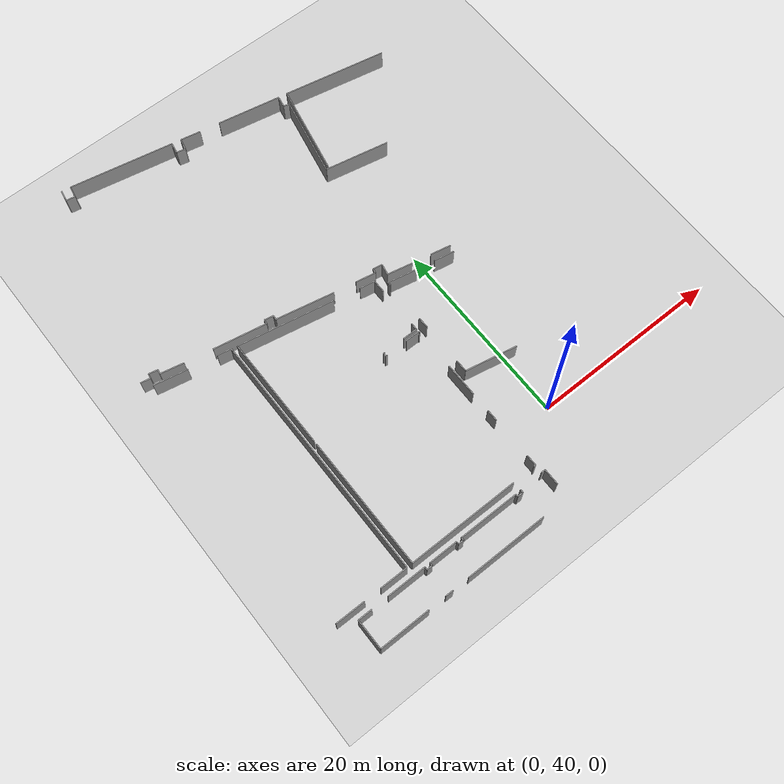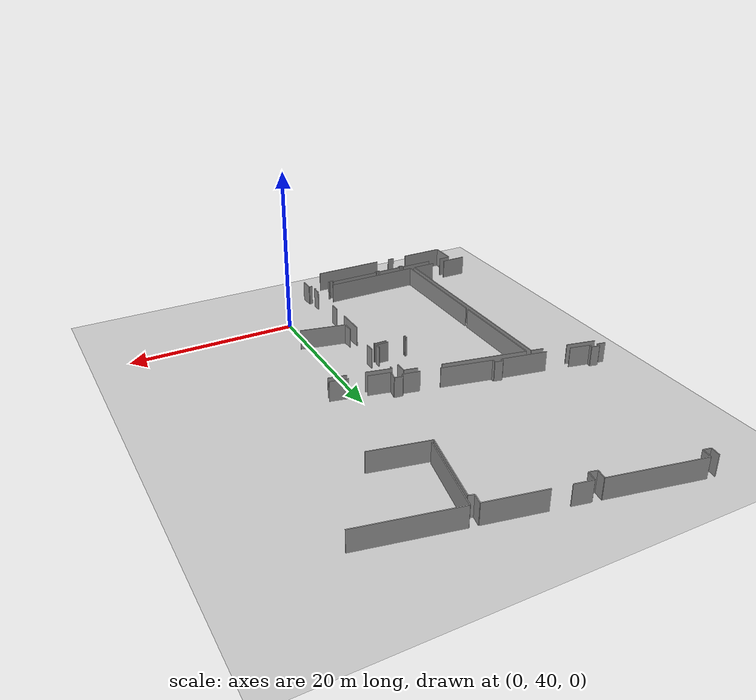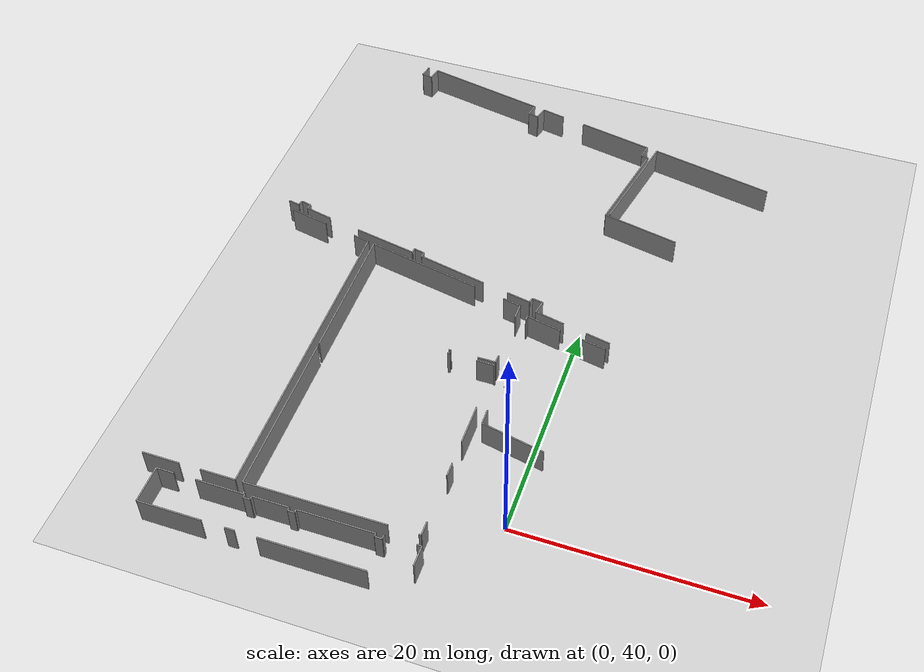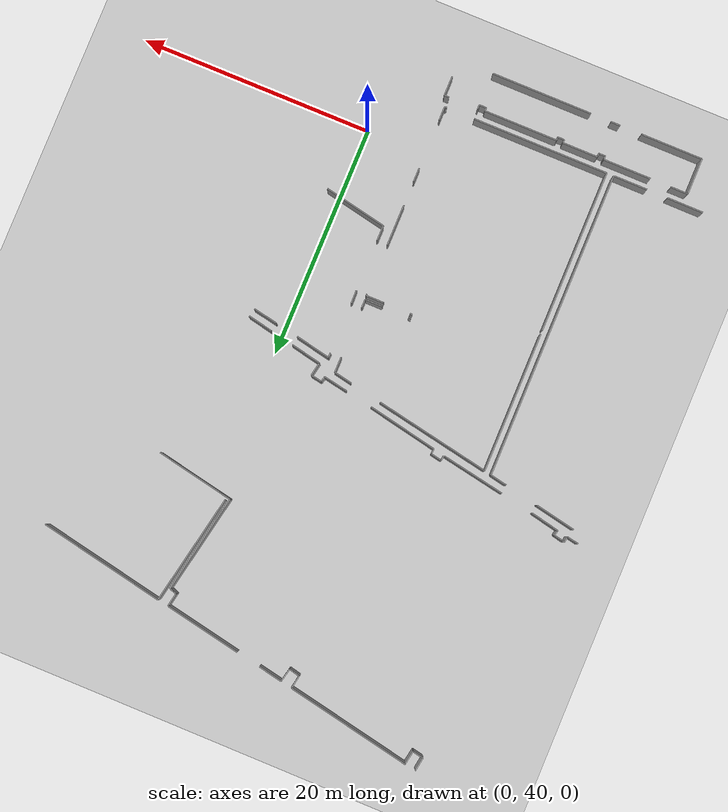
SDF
<sdf version="1.6">
 <world name="default">
  <model name="ground_plane">
   <static>1</static>
   <link name="link">
    <collision name="collision">
     <geometry><plane><normal>0 0 1</normal><size>100 100</size></plane></geometry>
     <surface><friction><ode><mu>100</mu><mu2>50</mu2></ode></friction></surface>
    </collision>
    <visual name="visual">
     <cast_shadows>0</cast_shadows>
     <geometry><plane><normal>0 0 1</normal><size>100 100</size></plane></geometry>
     <material>
      <script><uri>file://media/materials/scripts/gazebo.material</uri><name>Gazebo/Grey</name></script>
     </material>
    </visual>
   </link>
  </model>
  <model name="0510045925_40">
   <static>1</static>
   <link name="Wall_406">
    <collision name="Wall_406_Collision">
     <geometry><box><size>1.16762473719 0.1 2.5</size></box></geometry>
     <pose>0.583812368594 0 1.25 0 0 0</pose>
    </collision>
    <visual name="Wall_406_Visual">
     <pose>0.583812368594 0 1.25 0 0 0</pose>
     <geometry><box><size>1.16762473719 0.1 2.5</size></box></geometry>
     <material>
      <script><uri>file://media/materials/scripts/gazebo.material</uri><name>Gazebo/Grey</name></script>
      <ambient>1 1 1 1</ambient>
     </material>
    </visual>
    <pose>110.372122535 -14.1389051039 0 0 0 -1.73322917327</pose>
   </link>
   <link name="Wall_407">
    <collision name="Wall_407_Collision">
     <geometry><box><size>0.953694490058 0.1 2.5</size></box></geometry>
     <pose>0.476847245029 0 1.25 0 0 0</pose>
    </collision>
    <visual name="Wall_407_Visual">
     <pose>0.476847245029 0 1.25 0 0 0</pose>
     <geometry><box><size>0.953694490058 0.1 2.5</size></box></geometry>
     <material>
      <script><uri>file://media/materials/scripts/gazebo.material</uri><name>Gazebo/Grey</name></script>
      <ambient>1 1 1 1</ambient>
     </material>
    </visual>
    <pose>110.18329484 -15.2911601228 0 0 0 -0.191445734444</pose>
   </link>
   <link name="Wall_408">
    <collision name="Wall_408_Collision">
     <geometry><box><size>1.19925465772 0.1 2.5</size></box></geometry>
     <pose>0.599627328858 0 1.25 0 0 0</pose>
    </collision>
    <visual name="Wall_408_Visual">
     <pose>0.599627328858 0 1.25 0 0 0</pose>
     <geometry><box><size>1.19925465772 0.1 2.5</size></box></geometry>
     <material>
      <script><uri>file://media/materials/scripts/gazebo.material</uri><name>Gazebo/Grey</name></script>
      <ambient>1 1 1 1</ambient>
     </material>
    </visual>
    <pose>111.119565493 -15.4726275983 0 0 0 1.39336573392</pose>
   </link>
   <link name="Wall_409">
    <collision name="Wall_409_Collision">
     <geometry><box><size>11.0097340913 0.1 2.5</size></box></geometry>
     <pose>5.50486704563 0 1.25 0 0 0</pose>
    </collision>
    <visual name="Wall_409_Visual">
     <pose>5.50486704563 0 1.25 0 0 0</pose>
     <geometry><box><size>11.0097340913 0.1 2.5</size></box></geometry>
     <material>
      <script><uri>file://media/materials/scripts/gazebo.material</uri><name>Gazebo/Grey</name></script>
      <ambient>1 1 1 1</ambient>
     </material>
    </visual>
    <pose>111.331235248 -14.2922007056 0 0 0 -0.194918079295</pose>
   </link>
   <link name="Wall_410">
    <collision name="Wall_410_Collision">
     <geometry><box><size>1.1505442281 0.1 2.5</size></box></geometry>
     <pose>0.575272114048 0 1.25 0 0 0</pose>
    </collision>
    <visual name="Wall_410_Visual">
     <pose>0.575272114048 0 1.25 0 0 0</pose>
     <geometry><box><size>1.1505442281 0.1 2.5</size></box></geometry>
     <material>
      <script><uri>file://media/materials/scripts/gazebo.material</uri><name>Gazebo/Grey</name></script>
      <ambient>1 1 1 1</ambient>
     </material>
    </visual>
    <pose>122.132483947 -16.4246338925 0 0 0 -1.74327061481</pose>
   </link>
   <link name="Wall_411">
    <collision name="Wall_411_Collision">
     <geometry><box><size>0.946595777767 0.1 2.5</size></box></geometry>
     <pose>0.473297888884 0 1.25 0 0 0</pose>
    </collision>
    <visual name="Wall_411_Visual">
     <pose>0.473297888884 0 1.25 0 0 0</pose>
     <geometry><box><size>0.946595777767 0.1 2.5</size></box></geometry>
     <material>
      <script><uri>file://media/materials/scripts/gazebo.material</uri><name>Gazebo/Grey</name></script>
      <ambient>1 1 1 1</ambient>
     </material>
    </visual>
    <pose>121.93502703 -17.5581076622 0 0 0 -0.229371189647</pose>
   </link>
   <link name="Wall_412">
    <collision name="Wall_412_Collision">
     <geometry><box><size>1.1955683 0.1 2.5</size></box></geometry>
     <pose>0.59778415 0 1.25 0 0 0</pose>
    </collision>
    <visual name="Wall_412_Visual">
     <pose>0.59778415 0 1.25 0 0 0</pose>
     <geometry><box><size>1.1955683 0.1 2.5</size></box></geometry>
     <material>
      <script><uri>file://media/materials/scripts/gazebo.material</uri><name>Gazebo/Grey</name></script>
      <ambient>1 1 1 1</ambient>
     </material>
    </visual>
    <pose>122.856831045 -17.7733306261 0 0 0 1.349709702</pose>
   </link>
   <link name="Wall_413">
    <collision name="Wall_413_Collision">
     <geometry><box><size>2.12935052196 0.1 2.5</size></box></geometry>
     <pose>1.06467526098 0 1.25 0 0 0</pose>
    </collision>
    <visual name="Wall_413_Visual">
     <pose>1.06467526098 0 1.25 0 0 0</pose>
     <geometry><box><size>2.12935052196 0.1 2.5</size></box></geometry>
     <material>
      <script><uri>file://media/materials/scripts/gazebo.material</uri><name>Gazebo/Grey</name></script>
      <ambient>1 1 1 1</ambient>
     </material>
    </visual>
    <pose>123.119007132 -16.60686277 0 0 0 -0.198564329771</pose>
   </link>
   <link name="Wall_414">
    <collision name="Wall_414_Collision">
     <geometry><box><size>6.74380614563 0.1 2.5</size></box></geometry>
     <pose>3.37190307281 0 1.25 0 0 0</pose>
    </collision>
    <visual name="Wall_414_Visual">
     <pose>3.37190307281 0 1.25 0 0 0</pose>
     <geometry><box><size>6.74380614563 0.1 2.5</size></box></geometry>
     <material>
      <script><uri>file://media/materials/scripts/gazebo.material</uri><name>Gazebo/Grey</name></script>
      <ambient>1 1 1 1</ambient>
     </material>
    </visual>
    <pose>127.3054491 -17.4121722799 0 0 0 -0.191409728844</pose>
   </link>
   <link name="Wall_415">
    <collision name="Wall_415_Collision">
     <geometry><box><size>1.17546431972 0.1 2.5</size></box></geometry>
     <pose>0.587732159859 0 1.25 0 0 0</pose>
    </collision>
    <visual name="Wall_415_Visual">
     <pose>0.587732159859 0 1.25 0 0 0</pose>
     <geometry><box><size>1.17546431972 0.1 2.5</size></box></geometry>
     <material>
      <script><uri>file://media/materials/scripts/gazebo.material</uri><name>Gazebo/Grey</name></script>
      <ambient>1 1 1 1</ambient>
     </material>
    </visual>
    <pose>133.926093246 -18.6951346413 0 0 0 -1.75976523876</pose>
   </link>
   <link name="Wall_416">
    <collision name="Wall_416_Collision">
     <geometry><box><size>0.638072084285 0.1 2.5</size></box></geometry>
     <pose>0.319036042143 0 1.25 0 0 0</pose>
    </collision>
    <visual name="Wall_416_Visual">
     <pose>0.319036042143 0 1.25 0 0 0</pose>
     <geometry><box><size>0.638072084285 0.1 2.5</size></box></geometry>
     <material>
      <script><uri>file://media/materials/scripts/gazebo.material</uri><name>Gazebo/Grey</name></script>
      <ambient>1 1 1 1</ambient>
     </material>
    </visual>
    <pose>133.705286668 -19.8496738661 0 0 0 -0.338983720525</pose>
   </link>
   <link name="Wall_417">
    <collision name="Wall_417_Collision">
     <geometry><box><size>8.68907064149 0.1 2.5</size></box></geometry>
     <pose>4.34453532074 0 1.25 0 0 0</pose>
    </collision>
    <visual name="Wall_417_Visual">
     <pose>4.34453532074 0 1.25 0 0 0</pose>
     <geometry><box><size>8.68907064149 0.1 2.5</size></box></geometry>
     <material>
      <script><uri>file://media/materials/scripts/gazebo.material</uri><name>Gazebo/Grey</name></script>
      <ambient>1 1 1 1</ambient>
     </material>
    </visual>
    <pose>134.307048044 -20.0618512221 0 0 0 -1.76744146718</pose>
   </link>
   <link name="Wall_418">
    <collision name="Wall_418_Collision">
     <geometry><box><size>6.83606725752 0.1 2.5</size></box></geometry>
     <pose>3.41803362876 0 1.25 0 0 0</pose>
    </collision>
    <visual name="Wall_418_Visual">
     <pose>3.41803362876 0 1.25 0 0 0</pose>
     <geometry><box><size>6.83606725752 0.1 2.5</size></box></geometry>
     <material>
      <script><uri>file://media/materials/scripts/gazebo.material</uri><name>Gazebo/Grey</name></script>
      <ambient>1 1 1 1</ambient>
     </material>
    </visual>
    <pose>132.609375397 -28.5834623487 0 0 0 -0.196965972208</pose>
   </link>
   <link name="Wall_476">
    <collision name="Wall_476_Collision">
     <geometry><box><size>2.17852946456 0.1 2.5</size></box></geometry>
     <pose>1.08926473228 0 1.25 0 0 0</pose>
    </collision>
    <visual name="Wall_476_Visual">
     <pose>1.08926473228 0 1.25 0 0 0</pose>
     <geometry><box><size>2.17852946456 0.1 2.5</size></box></geometry>
     <material>
      <script><uri>file://media/materials/scripts/gazebo.material</uri><name>Gazebo/Grey</name></script>
      <ambient>1 1 1 1</ambient>
     </material>
    </visual>
    <pose>136.928301312 -42.9633004238 0 0 0 2.94246066704</pose>
   </link>
   <link name="Wall_477">
    <collision name="Wall_477_Collision">
     <geometry><box><size>2.65362689212 0.1 2.5</size></box></geometry>
     <pose>1.32681344606 0 1.25 0 0 0</pose>
    </collision>
    <visual name="Wall_477_Visual">
     <pose>1.32681344606 0 1.25 0 0 0</pose>
     <geometry><box><size>2.65362689212 0.1 2.5</size></box></geometry>
     <material>
      <script><uri>file://media/materials/scripts/gazebo.material</uri><name>Gazebo/Grey</name></script>
      <ambient>1 1 1 1</ambient>
     </material>
    </visual>
    <pose>132.750488566 -42.1387020634 0 0 0 2.93536237397</pose>
   </link>
   <link name="Wall_478">
    <collision name="Wall_478_Collision">
     <geometry><box><size>1.18428658175 0.1 2.5</size></box></geometry>
     <pose>0.592143290875 0 1.25 0 0 0</pose>
    </collision>
    <visual name="Wall_478_Visual">
     <pose>0.592143290875 0 1.25 0 0 0</pose>
     <geometry><box><size>1.18428658175 0.1 2.5</size></box></geometry>
     <material>
      <script><uri>file://media/materials/scripts/gazebo.material</uri><name>Gazebo/Grey</name></script>
      <ambient>1 1 1 1</ambient>
     </material>
    </visual>
    <pose>130.153092561 -41.5953148397 0 0 0 1.37604859836</pose>
   </link>
   <link name="Wall_479">
    <collision name="Wall_479_Collision">
     <geometry><box><size>0.963227024145 0.1 2.5</size></box></geometry>
     <pose>0.481613512073 0 1.25 0 0 0</pose>
    </collision>
    <visual name="Wall_479_Visual">
     <pose>0.481613512073 0 1.25 0 0 0</pose>
     <geometry><box><size>0.963227024145 0.1 2.5</size></box></geometry>
     <material>
      <script><uri>file://media/materials/scripts/gazebo.material</uri><name>Gazebo/Grey</name></script>
      <ambient>1 1 1 1</ambient>
     </material>
    </visual>
    <pose>130.382274562 -40.4334153955 0 0 0 2.97081267335</pose>
   </link>
   <link name="Wall_480">
    <collision name="Wall_480_Collision">
     <geometry><box><size>0.472501591577 0.1 2.5</size></box></geometry>
     <pose>0.236250795788 0 1.25 0 0 0</pose>
    </collision>
    <visual name="Wall_480_Visual">
     <pose>0.236250795788 0 1.25 0 0 0</pose>
     <geometry><box><size>0.472501591577 0.1 2.5</size></box></geometry>
     <material>
      <script><uri>file://media/materials/scripts/gazebo.material</uri><name>Gazebo/Grey</name></script>
      <ambient>1 1 1 1</ambient>
     </material>
    </visual>
    <pose>129.433060075 -40.2697139667 0 0 0 -1.81603554229</pose>
   </link>
   <link name="Wall_481">
    <collision name="Wall_481_Collision">
     <geometry><box><size>2.1151331569 0.1 2.5</size></box></geometry>
     <pose>1.05756657845 0 1.25 0 0 0</pose>
    </collision>
    <visual name="Wall_481_Visual">
     <pose>1.05756657845 0 1.25 0 0 0</pose>
     <geometry><box><size>2.1151331569 0.1 2.5</size></box></geometry>
     <material>
      <script><uri>file://media/materials/scripts/gazebo.material</uri><name>Gazebo/Grey</name></script>
      <ambient>1 1 1 1</ambient>
     </material>
    </visual>
    <pose>129.318342174 -40.7280779676 0 0 0 2.95683439136</pose>
   </link>
   <link name="Wall_482">
    <collision name="Wall_482_Collision">
     <geometry><box><size>6.15661132291 0.1 2.5</size></box></geometry>
     <pose>3.07830566145 0 1.25 0 0 0</pose>
    </collision>
    <visual name="Wall_482_Visual">
     <pose>3.07830566145 0 1.25 0 0 0</pose>
     <geometry><box><size>6.15661132291 0.1 2.5</size></box></geometry>
     <material>
      <script><uri>file://media/materials/scripts/gazebo.material</uri><name>Gazebo/Grey</name></script>
      <ambient>1 1 1 1</ambient>
     </material>
    </visual>
    <pose>124.894088983 -39.9098246237 0 0 0 2.94198188191</pose>
   </link>
   <link name="Wall_483">
    <collision name="Wall_483_Collision">
     <geometry><box><size>0.448920073572 0.1 2.5</size></box></geometry>
     <pose>0.224460036786 0 1.25 0 0 0</pose>
    </collision>
    <visual name="Wall_483_Visual">
     <pose>0.224460036786 0 1.25 0 0 0</pose>
     <geometry><box><size>0.448920073572 0.1 2.5</size></box></geometry>
     <material>
      <script><uri>file://media/materials/scripts/gazebo.material</uri><name>Gazebo/Grey</name></script>
      <ambient>1 1 1 1</ambient>
     </material>
    </visual>
    <pose>118.859724372 -38.6890434253 0 0 0 1.48986176769</pose>
   </link>
   <link name="Wall_484">
    <collision name="Wall_484_Collision">
     <geometry><box><size>0.967169067021 0.1 2.5</size></box></geometry>
     <pose>0.48358453351 0 1.25 0 0 0</pose>
    </collision>
    <visual name="Wall_484_Visual">
     <pose>0.48358453351 0 1.25 0 0 0</pose>
     <geometry><box><size>0.967169067021 0.1 2.5</size></box></geometry>
     <material>
      <script><uri>file://media/materials/scripts/gazebo.material</uri><name>Gazebo/Grey</name></script>
      <ambient>1 1 1 1</ambient>
     </material>
    </visual>
    <pose>118.896017868 -38.241592853 0 0 0 2.9418812109</pose>
   </link>
   <link name="Wall_485">
    <collision name="Wall_485_Collision">
     <geometry><box><size>0.441941517191 0.1 2.5</size></box></geometry>
     <pose>0.220970758595 0 1.25 0 0 0</pose>
    </collision>
    <visual name="Wall_485_Visual">
     <pose>0.220970758595 0 1.25 0 0 0</pose>
     <geometry><box><size>0.441941517191 0.1 2.5</size></box></geometry>
     <material>
      <script><uri>file://media/materials/scripts/gazebo.material</uri><name>Gazebo/Grey</name></script>
      <ambient>1 1 1 1</ambient>
     </material>
    </visual>
    <pose>117.948072384 -38.0497195503 0 0 0 -1.68475135438</pose>
   </link>
   <link name="Wall_486">
    <collision name="Wall_486_Collision">
     <geometry><box><size>5.6040845928 0.1 2.5</size></box></geometry>
     <pose>2.8020422964 0 1.25 0 0 0</pose>
    </collision>
    <visual name="Wall_486_Visual">
     <pose>2.8020422964 0 1.25 0 0 0</pose>
     <geometry><box><size>5.6040845928 0.1 2.5</size></box></geometry>
     <material>
      <script><uri>file://media/materials/scripts/gazebo.material</uri><name>Gazebo/Grey</name></script>
      <ambient>1 1 1 1</ambient>
     </material>
    </visual>
    <pose>117.897819852 -38.4887947006 0 0 0 2.9586038853</pose>
   </link>
   <link name="Wall_487">
    <collision name="Wall_487_Collision">
     <geometry><box><size>2.47294851765 0.1 2.5</size></box></geometry>
     <pose>1.23647425883 0 1.25 0 0 0</pose>
    </collision>
    <visual name="Wall_487_Visual">
     <pose>1.23647425883 0 1.25 0 0 0</pose>
     <geometry><box><size>2.47294851765 0.1 2.5</size></box></geometry>
     <material>
      <script><uri>file://media/materials/scripts/gazebo.material</uri><name>Gazebo/Grey</name></script>
      <ambient>1 1 1 1</ambient>
     </material>
    </visual>
    <pose>109.466054161 -36.9142153752 0 0 0 2.9312949735</pose>
   </link>
   <link name="Wall_488">
    <collision name="Wall_488_Collision">
     <geometry><box><size>0.454938948549 0.1 2.5</size></box></geometry>
     <pose>0.227469474275 0 1.25 0 0 0</pose>
    </collision>
    <visual name="Wall_488_Visual">
     <pose>0.227469474275 0 1.25 0 0 0</pose>
     <geometry><box><size>0.454938948549 0.1 2.5</size></box></geometry>
     <material>
      <script><uri>file://media/materials/scripts/gazebo.material</uri><name>Gazebo/Grey</name></script>
      <ambient>1 1 1 1</ambient>
     </material>
    </visual>
    <pose>107.047587625 -36.3979848227 0 0 0 1.37143140406</pose>
   </link>
   <link name="Wall_489">
    <collision name="Wall_489_Collision">
     <geometry><box><size>0.955436572548 0.1 2.5</size></box></geometry>
     <pose>0.477718286274 0 1.25 0 0 0</pose>
    </collision>
    <visual name="Wall_489_Visual">
     <pose>0.477718286274 0 1.25 0 0 0</pose>
     <geometry><box><size>0.955436572548 0.1 2.5</size></box></geometry>
     <material>
      <script><uri>file://media/materials/scripts/gazebo.material</uri><name>Gazebo/Grey</name></script>
      <ambient>1 1 1 1</ambient>
     </material>
    </visual>
    <pose>107.137686861 -35.9520570544 0 0 0 2.92554565117</pose>
   </link>
   <link name="Wall_490">
    <collision name="Wall_490_Collision">
     <geometry><box><size>0.489093044463 0.1 2.5</size></box></geometry>
     <pose>0.244546522231 0 1.25 0 0 0</pose>
    </collision>
    <visual name="Wall_490_Visual">
     <pose>0.244546522231 0 1.25 0 0 0</pose>
     <geometry><box><size>0.489093044463 0.1 2.5</size></box></geometry>
     <material>
      <script><uri>file://media/materials/scripts/gazebo.material</uri><name>Gazebo/Grey</name></script>
      <ambient>1 1 1 1</ambient>
     </material>
    </visual>
    <pose>106.204461816 -35.7472399178 0 0 0 -1.76188218003</pose>
   </link>
   <link name="Wall_491">
    <collision name="Wall_491_Collision">
     <geometry><box><size>1.01992370082 0.1 2.5</size></box></geometry>
     <pose>0.509961850411 0 1.25 0 0 0</pose>
    </collision>
    <visual name="Wall_491_Visual">
     <pose>0.509961850411 0 1.25 0 0 0</pose>
     <geometry><box><size>1.01992370082 0.1 2.5</size></box></geometry>
     <material>
      <script><uri>file://media/materials/scripts/gazebo.material</uri><name>Gazebo/Grey</name></script>
      <ambient>1 1 1 1</ambient>
     </material>
    </visual>
    <pose>106.111570772 -36.2274307759 0 0 0 2.95791091013</pose>
   </link>
   <link name="Wall_509">
    <collision name="Wall_509_Collision">
     <geometry><box><size>9.72059393924 0.1 2.5</size></box></geometry>
     <pose>4.86029696962 0 1.25 0 0 0</pose>
    </collision>
    <visual name="Wall_509_Visual">
     <pose>4.86029696962 0 1.25 0 0 0</pose>
     <geometry><box><size>9.72059393924 0.1 2.5</size></box></geometry>
     <material>
      <script><uri>file://media/materials/scripts/gazebo.material</uri><name>Gazebo/Grey</name></script>
      <ambient>1 1 1 1</ambient>
     </material>
    </visual>
    <pose>132.957082308 -28.3837212253 0 0 0 1.3729552825</pose>
   </link>
   <link name="Wall_510">
    <collision name="Wall_510_Collision">
     <geometry><box><size>11.0465692873 0.1 2.5</size></box></geometry>
     <pose>5.52328464364 0 1.25 0 0 0</pose>
    </collision>
    <visual name="Wall_510_Visual">
     <pose>5.52328464364 0 1.25 0 0 0</pose>
     <geometry><box><size>11.0465692873 0.1 2.5</size></box></geometry>
     <material>
      <script><uri>file://media/materials/scripts/gazebo.material</uri><name>Gazebo/Grey</name></script>
      <ambient>1 1 1 1</ambient>
     </material>
    </visual>
    <pose>134.867693713 -18.8527448542 0 0 0 -0.194845234647</pose>
   </link>
   <link name="Wall_617">
    <collision name="Wall_617_Collision">
     <geometry><box><size>1.32002906761 0.1 2.5</size></box></geometry>
     <pose>0.660014533807 0 1.25 0 0 0</pose>
    </collision>
    <visual name="Wall_617_Visual">
     <pose>0.660014533807 0 1.25 0 0 0</pose>
     <geometry><box><size>1.32002906761 0.1 2.5</size></box></geometry>
     <material>
      <script><uri>file://media/materials/scripts/gazebo.material</uri><name>Gazebo/Grey</name></script>
      <ambient>1 1 1 1</ambient>
     </material>
    </visual>
    <pose>129.645745032 -54.0005837415 0 0 0 1.57502625734</pose>
   </link>
   <link name="Wall_618">
    <collision name="Wall_618_Collision">
     <geometry><box><size>1.15311932206 0.1 2.5</size></box></geometry>
     <pose>0.576559661031 0 1.25 0 0 0</pose>
    </collision>
    <visual name="Wall_618_Visual">
     <pose>0.576559661031 0 1.25 0 0 0</pose>
     <geometry><box><size>1.15311932206 0.1 2.5</size></box></geometry>
     <material>
      <script><uri>file://media/materials/scripts/gazebo.material</uri><name>Gazebo/Grey</name></script>
      <ambient>1 1 1 1</ambient>
     </material>
    </visual>
    <pose>129.646760235 -48.2618969062 0 0 0 1.59567010365</pose>
   </link>
   <link name="Wall_619">
    <collision name="Wall_619_Collision">
     <geometry><box><size>0.398909413856 0.1 2.5</size></box></geometry>
     <pose>0.199454706928 0 1.25 0 0 0</pose>
    </collision>
    <visual name="Wall_619_Visual">
     <pose>0.199454706928 0 1.25 0 0 0</pose>
     <geometry><box><size>0.398909413856 0.1 2.5</size></box></geometry>
     <material>
      <script><uri>file://media/materials/scripts/gazebo.material</uri><name>Gazebo/Grey</name></script>
      <ambient>1 1 1 1</ambient>
     </material>
    </visual>
    <pose>129.632547397 -42.692748915 0 0 0 1.52369742636</pose>
   </link>
   <link name="Wall_620">
    <collision name="Wall_620_Collision">
     <geometry><box><size>3.0720541174 0.1 2.5</size></box></geometry>
     <pose>1.5360270587 0 1.25 0 0 0</pose>
    </collision>
    <visual name="Wall_620_Visual">
     <pose>1.5360270587 0 1.25 0 0 0</pose>
     <geometry><box><size>3.0720541174 0.1 2.5</size></box></geometry>
     <material>
      <script><uri>file://media/materials/scripts/gazebo.material</uri><name>Gazebo/Grey</name></script>
      <ambient>1 1 1 1</ambient>
     </material>
    </visual>
    <pose>129.651328646 -42.294281871 0 0 0 -0.204492235812</pose>
   </link>
   <link name="Wall_621">
    <collision name="Wall_621_Collision">
     <geometry><box><size>2.14410288026 0.1 2.5</size></box></geometry>
     <pose>1.07205144013 0 1.25 0 0 0</pose>
    </collision>
    <visual name="Wall_621_Visual">
     <pose>1.07205144013 0 1.25 0 0 0</pose>
     <geometry><box><size>2.14410288026 0.1 2.5</size></box></geometry>
     <material>
      <script><uri>file://media/materials/scripts/gazebo.material</uri><name>Gazebo/Grey</name></script>
      <ambient>1 1 1 1</ambient>
     </material>
    </visual>
    <pose>134.657800563 -43.2726834344 0 0 0 -0.186809522655</pose>
   </link>
   <link name="Wall_636">
    <collision name="Wall_636_Collision">
     <geometry><box><size>5.48937138572 0.1 2.5</size></box></geometry>
     <pose>2.74468569286 0 1.25 0 0 0</pose>
    </collision>
    <visual name="Wall_636_Visual">
     <pose>2.74468569286 0 1.25 0 0 0</pose>
     <geometry><box><size>5.48937138572 0.1 2.5</size></box></geometry>
     <material>
      <script><uri>file://media/materials/scripts/gazebo.material</uri><name>Gazebo/Grey</name></script>
      <ambient>1 1 1 1</ambient>
     </material>
    </visual>
    <pose>135.027841933 -55.0805055709 0 0 0 2.9435714421</pose>
   </link>
   <link name="Wall_787">
    <collision name="Wall_787_Collision">
     <geometry><box><size>3.55210084339 0.1 2.5</size></box></geometry>
     <pose>1.7760504217 0 1.25 0 0 0</pose>
    </collision>
    <visual name="Wall_787_Visual">
     <pose>1.7760504217 0 1.25 0 0 0</pose>
     <geometry><box><size>3.55210084339 0.1 2.5</size></box></geometry>
     <material>
      <script><uri>file://media/materials/scripts/gazebo.material</uri><name>Gazebo/Grey</name></script>
      <ambient>1 1 1 1</ambient>
     </material>
    </visual>
    <pose>105.88543438 -36.9644679069 0 0 0 -0.197703838524</pose>
   </link>
   <link name="Wall_788">
    <collision name="Wall_788_Collision">
     <geometry><box><size>1.47008746016 0.1 2.5</size></box></geometry>
     <pose>0.73504373008 0 1.25 0 0 0</pose>
    </collision>
    <visual name="Wall_788_Visual">
     <pose>0.73504373008 0 1.25 0 0 0</pose>
     <geometry><box><size>1.47008746016 0.1 2.5</size></box></geometry>
     <material>
      <script><uri>file://media/materials/scripts/gazebo.material</uri><name>Gazebo/Grey</name></script>
      <ambient>1 1 1 1</ambient>
     </material>
    </visual>
    <pose>112.315728027 -38.2217964011 0 0 0 -0.189134083287</pose>
   </link>
   <link name="Wall_789">
    <collision name="Wall_789_Collision">
     <geometry><box><size>26.5277531027 0.1 2.5</size></box></geometry>
     <pose>13.2638765514 0 1.25 0 0 0</pose>
    </collision>
    <visual name="Wall_789_Visual">
     <pose>13.2638765514 0 1.25 0 0 0</pose>
     <geometry><box><size>26.5277531027 0.1 2.5</size></box></geometry>
     <material>
      <script><uri>file://media/materials/scripts/gazebo.material</uri><name>Gazebo/Grey</name></script>
      <ambient>1 1 1 1</ambient>
     </material>
    </visual>
    <pose>113.75960001 -38.4981853252 0 0 0 -1.57079632679</pose>
   </link>
   <link name="Wall_790">
    <collision name="Wall_790_Collision">
     <geometry><box><size>2.9405345042 0.1 2.5</size></box></geometry>
     <pose>1.4702672521 0 1.25 0 0 0</pose>
    </collision>
    <visual name="Wall_790_Visual">
     <pose>1.4702672521 0 1.25 0 0 0</pose>
     <geometry><box><size>2.9405345042 0.1 2.5</size></box></geometry>
     <material>
      <script><uri>file://media/materials/scripts/gazebo.material</uri><name>Gazebo/Grey</name></script>
      <ambient>1 1 1 1</ambient>
     </material>
    </visual>
    <pose>113.75960001 -65.025938428 0 0 0 3.14159265359</pose>
   </link>
   <link name="Wall_791">
    <collision name="Wall_791_Collision">
     <geometry><box><size>3.13040852463 0.1 2.5</size></box></geometry>
     <pose>1.56520426232 0 1.25 0 0 0</pose>
    </collision>
    <visual name="Wall_791_Visual">
     <pose>1.56520426232 0 1.25 0 0 0</pose>
     <geometry><box><size>3.13040852463 0.1 2.5</size></box></geometry>
     <material>
      <script><uri>file://media/materials/scripts/gazebo.material</uri><name>Gazebo/Grey</name></script>
      <ambient>1 1 1 1</ambient>
     </material>
    </visual>
    <pose>109.015811781 -65.025938428 0 0 0 3.13713346473</pose>
   </link>
   <link name="Wall_792">
    <collision name="Wall_792_Collision">
     <geometry><box><size>12.0474099642 0.1 2.5</size></box></geometry>
     <pose>6.02370498211 0 1.25 0 0 0</pose>
    </collision>
    <visual name="Wall_792_Visual">
     <pose>6.02370498211 0 1.25 0 0 0</pose>
     <geometry><box><size>12.0474099642 0.1 2.5</size></box></geometry>
     <material>
      <script><uri>file://media/materials/scripts/gazebo.material</uri><name>Gazebo/Grey</name></script>
      <ambient>1 1 1 1</ambient>
     </material>
    </visual>
    <pose>114.367198802 -50.6765564326 0 0 0 1.57079632679</pose>
   </link>
   <link name="Wall_793">
    <collision name="Wall_793_Collision">
     <geometry><box><size>10.175720697 0.1 2.5</size></box></geometry>
     <pose>5.08786034848 0 1.25 0 0 0</pose>
    </collision>
    <visual name="Wall_793_Visual">
     <pose>5.08786034848 0 1.25 0 0 0</pose>
     <geometry><box><size>10.175720697 0.1 2.5</size></box></geometry>
     <material>
      <script><uri>file://media/materials/scripts/gazebo.material</uri><name>Gazebo/Grey</name></script>
      <ambient>1 1 1 1</ambient>
     </material>
    </visual>
    <pose>114.367198802 -38.6291464684 0 0 0 -0.188654361264</pose>
   </link>
   <link name="Wall_794">
    <collision name="Wall_794_Collision">
     <geometry><box><size>1.33448389635 0.1 2.5</size></box></geometry>
     <pose>0.667241948174 0 1.25 0 0 0</pose>
    </collision>
    <visual name="Wall_794_Visual">
     <pose>0.667241948174 0 1.25 0 0 0</pose>
     <geometry><box><size>1.33448389635 0.1 2.5</size></box></geometry>
     <material>
      <script><uri>file://media/materials/scripts/gazebo.material</uri><name>Gazebo/Grey</name></script>
      <ambient>1 1 1 1</ambient>
     </material>
    </visual>
    <pose>128.700083754 -41.3859292911 0 0 0 -1.57079632679</pose>
   </link>
   <link name="Wall_795">
    <collision name="Wall_795_Collision">
     <geometry><box><size>0.746427755641 0.1 2.5</size></box></geometry>
     <pose>0.37321387782 0 1.25 0 0 0</pose>
    </collision>
    <visual name="Wall_795_Visual">
     <pose>0.37321387782 0 1.25 0 0 0</pose>
     <geometry><box><size>0.746427755641 0.1 2.5</size></box></geometry>
     <material>
      <script><uri>file://media/materials/scripts/gazebo.material</uri><name>Gazebo/Grey</name></script>
      <ambient>1 1 1 1</ambient>
     </material>
    </visual>
    <pose>128.700083754 -47.094667648 0 0 0 -1.57079632679</pose>
   </link>
   <link name="Wall_796">
    <collision name="Wall_796_Collision">
     <geometry><box><size>1.53853963097 0.1 2.5</size></box></geometry>
     <pose>0.769269815487 0 1.25 0 0 0</pose>
    </collision>
    <visual name="Wall_796_Visual">
     <pose>0.769269815487 0 1.25 0 0 0</pose>
     <geometry><box><size>1.53853963097 0.1 2.5</size></box></geometry>
     <material>
      <script><uri>file://media/materials/scripts/gazebo.material</uri><name>Gazebo/Grey</name></script>
      <ambient>1 1 1 1</ambient>
     </material>
    </visual>
    <pose>128.700083754 -47.8410954037 0 0 0 3.14159265359</pose>
   </link>
   <link name="Wall_797">
    <collision name="Wall_797_Collision">
     <geometry><box><size>0.20735514327 0.1 2.5</size></box></geometry>
     <pose>0.103677571635 0 1.25 0 0 0</pose>
    </collision>
    <visual name="Wall_797_Visual">
     <pose>0.103677571635 0 1.25 0 0 0</pose>
     <geometry><box><size>0.20735514327 0.1 2.5</size></box></geometry>
     <material>
      <script><uri>file://media/materials/scripts/gazebo.material</uri><name>Gazebo/Grey</name></script>
      <ambient>1 1 1 1</ambient>
     </material>
    </visual>
    <pose>124.866932311 -47.8410954037 0 0 0 3.14159265359</pose>
   </link>
   <link name="Wall_798">
    <collision name="Wall_798_Collision">
     <geometry><box><size>1.5898602193 0.1 2.5</size></box></geometry>
     <pose>0.794930109648 0 1.25 0 0 0</pose>
    </collision>
    <visual name="Wall_798_Visual">
     <pose>0.794930109648 0 1.25 0 0 0</pose>
     <geometry><box><size>1.5898602193 0.1 2.5</size></box></geometry>
     <material>
      <script><uri>file://media/materials/scripts/gazebo.material</uri><name>Gazebo/Grey</name></script>
      <ambient>1 1 1 1</ambient>
     </material>
    </visual>
    <pose>127.139717266 -41.0811146925 0 0 0 -0.192918585284</pose>
   </link>
   <link name="Wall_799">
    <collision name="Wall_799_Collision">
     <geometry><box><size>14.0070048984 0.1 2.5</size></box></geometry>
     <pose>7.00350244918 0 1.25 0 0 0</pose>
    </collision>
    <visual name="Wall_799_Visual">
     <pose>7.00350244918 0 1.25 0 0 0</pose>
     <geometry><box><size>14.0070048984 0.1 2.5</size></box></geometry>
     <material>
      <script><uri>file://media/materials/scripts/gazebo.material</uri><name>Gazebo/Grey</name></script>
      <ambient>1 1 1 1</ambient>
     </material>
    </visual>
    <pose>114.37024441 -65.0203548133 0 0 0 1.57079632679</pose>
   </link>
   <link name="Wall_800">
    <collision name="Wall_800_Collision">
     <geometry><box><size>0.214461561889 0.1 2.5</size></box></geometry>
     <pose>0.107230780945 0 1.25 0 0 0</pose>
    </collision>
    <visual name="Wall_800_Visual">
     <pose>0.107230780945 0 1.25 0 0 0</pose>
     <geometry><box><size>0.214461561889 0.1 2.5</size></box></geometry>
     <material>
      <script><uri>file://media/materials/scripts/gazebo.material</uri><name>Gazebo/Grey</name></script>
      <ambient>1 1 1 1</ambient>
     </material>
    </visual>
    <pose>124.665922185 -48.1669754575 0 0 0 0.0</pose>
   </link>
   <link name="Wall_801">
    <collision name="Wall_801_Collision">
     <geometry><box><size>1.5491992589 0.1 2.5</size></box></geometry>
     <pose>0.774599629451 0 1.25 0 0 0</pose>
    </collision>
    <visual name="Wall_801_Visual">
     <pose>0.774599629451 0 1.25 0 0 0</pose>
     <geometry><box><size>1.5491992589 0.1 2.5</size></box></geometry>
     <material>
      <script><uri>file://media/materials/scripts/gazebo.material</uri><name>Gazebo/Grey</name></script>
      <ambient>1 1 1 1</ambient>
     </material>
    </visual>
    <pose>127.185908987 -48.1669754575 0 0 0 0.0</pose>
   </link>
   <link name="Wall_802">
    <collision name="Wall_802_Collision">
     <geometry><box><size>0.134514352428 0.1 2.5</size></box></geometry>
     <pose>0.0672571762138 0 1.25 0 0 0</pose>
    </collision>
    <visual name="Wall_802_Visual">
     <pose>0.0672571762138 0 1.25 0 0 0</pose>
     <geometry><box><size>0.134514352428 0.1 2.5</size></box></geometry>
     <material>
      <script><uri>file://media/materials/scripts/gazebo.material</uri><name>Gazebo/Grey</name></script>
      <ambient>1 1 1 1</ambient>
     </material>
    </visual>
    <pose>128.735108246 -48.1669754575 0 0 0 -1.57079632679</pose>
   </link>
   <link name="Wall_803">
    <collision name="Wall_803_Collision">
     <geometry><box><size>3.53595086419 0.1 2.5</size></box></geometry>
     <pose>1.7679754321 0 1.25 0 0 0</pose>
    </collision>
    <visual name="Wall_803_Visual">
     <pose>1.7679754321 0 1.25 0 0 0</pose>
     <geometry><box><size>3.53595086419 0.1 2.5</size></box></geometry>
     <material>
      <script><uri>file://media/materials/scripts/gazebo.material</uri><name>Gazebo/Grey</name></script>
      <ambient>1 1 1 1</ambient>
     </material>
    </visual>
    <pose>128.735108246 -52.6757442704 0 0 0 -1.57079632679</pose>
   </link>
   <link name="Wall_804">
    <collision name="Wall_804_Collision">
     <geometry><box><size>1.20123854724 0.1 2.5</size></box></geometry>
     <pose>0.600619273622 0 1.25 0 0 0</pose>
    </collision>
    <visual name="Wall_804_Visual">
     <pose>0.600619273622 0 1.25 0 0 0</pose>
     <geometry><box><size>1.20123854724 0.1 2.5</size></box></geometry>
     <material>
      <script><uri>file://media/materials/scripts/gazebo.material</uri><name>Gazebo/Grey</name></script>
      <ambient>1 1 1 1</ambient>
     </material>
    </visual>
    <pose>128.735108246 -58.3103728332 0 0 0 -1.57079632679</pose>
   </link>
   <link name="Wall_805">
    <collision name="Wall_805_Collision">
     <geometry><box><size>1.18804091267 0.1 2.5</size></box></geometry>
     <pose>0.594020456334 0 1.25 0 0 0</pose>
    </collision>
    <visual name="Wall_805_Visual">
     <pose>0.594020456334 0 1.25 0 0 0</pose>
     <geometry><box><size>1.18804091267 0.1 2.5</size></box></geometry>
     <material>
      <script><uri>file://media/materials/scripts/gazebo.material</uri><name>Gazebo/Grey</name></script>
      <ambient>1 1 1 1</ambient>
     </material>
    </visual>
    <pose>128.735108246 -63.8318062993 0 0 0 -1.57079632679</pose>
   </link>
   <link name="Wall_806">
    <collision name="Wall_806_Collision">
     <geometry><box><size>0.178421867465 0.1 2.5</size></box></geometry>
     <pose>0.0892109337326 0 1.25 0 0 0</pose>
    </collision>
    <visual name="Wall_806_Visual">
     <pose>0.0892109337326 0 1.25 0 0 0</pose>
     <geometry><box><size>0.178421867465 0.1 2.5</size></box></geometry>
     <material>
      <script><uri>file://media/materials/scripts/gazebo.material</uri><name>Gazebo/Grey</name></script>
      <ambient>1 1 1 1</ambient>
     </material>
    </visual>
    <pose>128.735108246 -65.019847212 0 0 0 3.14159265359</pose>
   </link>
   <link name="Wall_807">
    <collision name="Wall_807_Collision">
     <geometry><box><size>11.7474175892 0.1 2.5</size></box></geometry>
     <pose>5.8737087946 0 1.25 0 0 0</pose>
    </collision>
    <visual name="Wall_807_Visual">
     <pose>5.8737087946 0 1.25 0 0 0</pose>
     <geometry><box><size>11.7474175892 0.1 2.5</size></box></geometry>
     <material>
      <script><uri>file://media/materials/scripts/gazebo.material</uri><name>Gazebo/Grey</name></script>
      <ambient>1 1 1 1</ambient>
     </material>
    </visual>
    <pose>126.117661988 -65.019847212 0 0 0 -3.14154944398</pose>
   </link>
   <link name="Wall_830">
    <collision name="Wall_830_Collision">
     <geometry><box><size>3.12073297632 0.1 2.5</size></box></geometry>
     <pose>1.56036648816 0 1.25 0 0 0</pose>
    </collision>
    <visual name="Wall_830_Visual">
     <pose>1.56036648816 0 1.25 0 0 0</pose>
     <geometry><box><size>3.12073297632 0.1 2.5</size></box></geometry>
     <material>
      <script><uri>file://media/materials/scripts/gazebo.material</uri><name>Gazebo/Grey</name></script>
      <ambient>1 1 1 1</ambient>
     </material>
    </visual>
    <pose>107.600873074 -69.0844648613 0 0 0 1.57079632679</pose>
   </link>
   <link name="Wall_831">
    <collision name="Wall_831_Collision">
     <geometry><box><size>1.48219588335 0.1 2.5</size></box></geometry>
     <pose>0.741097941677 0 1.25 0 0 0</pose>
    </collision>
    <visual name="Wall_831_Visual">
     <pose>0.741097941677 0 1.25 0 0 0</pose>
     <geometry><box><size>1.48219588335 0.1 2.5</size></box></geometry>
     <material>
      <script><uri>file://media/materials/scripts/gazebo.material</uri><name>Gazebo/Grey</name></script>
      <ambient>1 1 1 1</ambient>
     </material>
    </visual>
    <pose>107.600873074 -65.963731885 0 0 0 0.0</pose>
   </link>
   <link name="Wall_832">
    <collision name="Wall_832_Collision">
     <geometry><box><size>4.11639298495 0.1 2.5</size></box></geometry>
     <pose>2.05819649247 0 1.25 0 0 0</pose>
    </collision>
    <visual name="Wall_832_Visual">
     <pose>2.05819649247 0 1.25 0 0 0</pose>
     <geometry><box><size>4.11639298495 0.1 2.5</size></box></geometry>
     <material>
      <script><uri>file://media/materials/scripts/gazebo.material</uri><name>Gazebo/Grey</name></script>
      <ambient>1 1 1 1</ambient>
     </material>
    </visual>
    <pose>110.895967107 -65.963731885 0 0 0 0.0</pose>
   </link>
   <link name="Wall_833">
    <collision name="Wall_833_Collision">
     <geometry><box><size>0.30253039263 0.1 2.5</size></box></geometry>
     <pose>0.151265196315 0 1.25 0 0 0</pose>
    </collision>
    <visual name="Wall_833_Visual">
     <pose>0.151265196315 0 1.25 0 0 0</pose>
     <geometry><box><size>0.30253039263 0.1 2.5</size></box></geometry>
     <material>
      <script><uri>file://media/materials/scripts/gazebo.material</uri><name>Gazebo/Grey</name></script>
      <ambient>1 1 1 1</ambient>
     </material>
    </visual>
    <pose>115.012360092 -65.963731885 0 0 0 -1.57079632679</pose>
   </link>
   <link name="Wall_834">
    <collision name="Wall_834_Collision">
     <geometry><box><size>0.583995330068 0.1 2.5</size></box></geometry>
     <pose>0.291997665034 0 1.25 0 0 0</pose>
    </collision>
    <visual name="Wall_834_Visual">
     <pose>0.291997665034 0 1.25 0 0 0</pose>
     <geometry><box><size>0.583995330068 0.1 2.5</size></box></geometry>
     <material>
      <script><uri>file://media/materials/scripts/gazebo.material</uri><name>Gazebo/Grey</name></script>
      <ambient>1 1 1 1</ambient>
     </material>
    </visual>
    <pose>115.012360092 -66.2662622776 0 0 0 0.0</pose>
   </link>
   <link name="Wall_835">
    <collision name="Wall_835_Collision">
     <geometry><box><size>0.306591203269 0.1 2.5</size></box></geometry>
     <pose>0.153295601634 0 1.25 0 0 0</pose>
    </collision>
    <visual name="Wall_835_Visual">
     <pose>0.153295601634 0 1.25 0 0 0</pose>
     <geometry><box><size>0.306591203269 0.1 2.5</size></box></geometry>
     <material>
      <script><uri>file://media/materials/scripts/gazebo.material</uri><name>Gazebo/Grey</name></script>
      <ambient>1 1 1 1</ambient>
     </material>
    </visual>
    <pose>115.596355422 -66.2662622776 0 0 0 1.57079632679</pose>
   </link>
   <link name="Wall_836">
    <collision name="Wall_836_Collision">
     <geometry><box><size>3.03444075023 0.1 2.5</size></box></geometry>
     <pose>1.51722037512 0 1.25 0 0 0</pose>
    </collision>
    <visual name="Wall_836_Visual">
     <pose>1.51722037512 0 1.25 0 0 0</pose>
     <geometry><box><size>3.03444075023 0.1 2.5</size></box></geometry>
     <material>
      <script><uri>file://media/materials/scripts/gazebo.material</uri><name>Gazebo/Grey</name></script>
      <ambient>1 1 1 1</ambient>
     </material>
    </visual>
    <pose>115.596355422 -65.9596710743 0 0 0 0.0</pose>
   </link>
   <link name="Wall_837">
    <collision name="Wall_837_Collision">
     <geometry><box><size>0.276896525469 0.1 2.5</size></box></geometry>
     <pose>0.138448262734 0 1.25 0 0 0</pose>
    </collision>
    <visual name="Wall_837_Visual">
     <pose>0.138448262734 0 1.25 0 0 0</pose>
     <geometry><box><size>0.276896525469 0.1 2.5</size></box></geometry>
     <material>
      <script><uri>file://media/materials/scripts/gazebo.material</uri><name>Gazebo/Grey</name></script>
      <ambient>1 1 1 1</ambient>
     </material>
    </visual>
    <pose>118.630796173 -65.9596710743 0 0 0 -1.57079632679</pose>
   </link>
   <link name="Wall_838">
    <collision name="Wall_838_Collision">
     <geometry><box><size>0.567498286846 0.1 2.5</size></box></geometry>
     <pose>0.283749143423 0 1.25 0 0 0</pose>
    </collision>
    <visual name="Wall_838_Visual">
     <pose>0.283749143423 0 1.25 0 0 0</pose>
     <geometry><box><size>0.567498286846 0.1 2.5</size></box></geometry>
     <material>
      <script><uri>file://media/materials/scripts/gazebo.material</uri><name>Gazebo/Grey</name></script>
      <ambient>1 1 1 1</ambient>
     </material>
    </visual>
    <pose>118.630796173 -66.2365675998 0 0 0 0.0</pose>
   </link>
   <link name="Wall_839">
    <collision name="Wall_839_Collision">
     <geometry><box><size>0.277657927464 0.1 2.5</size></box></geometry>
     <pose>0.138828963732 0 1.25 0 0 0</pose>
    </collision>
    <visual name="Wall_839_Visual">
     <pose>0.138828963732 0 1.25 0 0 0</pose>
     <geometry><box><size>0.277657927464 0.1 2.5</size></box></geometry>
     <material>
      <script><uri>file://media/materials/scripts/gazebo.material</uri><name>Gazebo/Grey</name></script>
      <ambient>1 1 1 1</ambient>
     </material>
    </visual>
    <pose>119.19829446 -66.2365675998 0 0 0 1.57079632679</pose>
   </link>
   <link name="Wall_840">
    <collision name="Wall_840_Collision">
     <geometry><box><size>6.35593005254 0.1 2.5</size></box></geometry>
     <pose>3.17796502627 0 1.25 0 0 0</pose>
    </collision>
    <visual name="Wall_840_Visual">
     <pose>3.17796502627 0 1.25 0 0 0</pose>
     <geometry><box><size>6.35593005254 0.1 2.5</size></box></geometry>
     <material>
      <script><uri>file://media/materials/scripts/gazebo.material</uri><name>Gazebo/Grey</name></script>
      <ambient>1 1 1 1</ambient>
     </material>
    </visual>
    <pose>119.19829446 -65.9589096723 0 0 0 0.0</pose>
   </link>
   <link name="Wall_841">
    <collision name="Wall_841_Collision">
     <geometry><box><size>0.280957336108 0.1 2.5</size></box></geometry>
     <pose>0.140478668054 0 1.25 0 0 0</pose>
    </collision>
    <visual name="Wall_841_Visual">
     <pose>0.140478668054 0 1.25 0 0 0</pose>
     <geometry><box><size>0.280957336108 0.1 2.5</size></box></geometry>
     <material>
      <script><uri>file://media/materials/scripts/gazebo.material</uri><name>Gazebo/Grey</name></script>
      <ambient>1 1 1 1</ambient>
     </material>
    </visual>
    <pose>125.554224512 -65.9589096723 0 0 0 -1.57079632679</pose>
   </link>
   <link name="Wall_842">
    <collision name="Wall_842_Collision">
     <geometry><box><size>0.613182406538 0.1 2.5</size></box></geometry>
     <pose>0.306591203269 0 1.25 0 0 0</pose>
    </collision>
    <visual name="Wall_842_Visual">
     <pose>0.306591203269 0 1.25 0 0 0</pose>
     <geometry><box><size>0.613182406538 0.1 2.5</size></box></geometry>
     <material>
      <script><uri>file://media/materials/scripts/gazebo.material</uri><name>Gazebo/Grey</name></script>
      <ambient>1 1 1 1</ambient>
     </material>
    </visual>
    <pose>125.554224512 -66.2398670085 0 0 0 0.0</pose>
   </link>
   <link name="Wall_843">
    <collision name="Wall_843_Collision">
     <geometry><box><size>0.359635542245 0.1 2.5</size></box></geometry>
     <pose>0.179817771123 0 1.25 0 0 0</pose>
    </collision>
    <visual name="Wall_843_Visual">
     <pose>0.179817771123 0 1.25 0 0 0</pose>
     <geometry><box><size>0.359635542245 0.1 2.5</size></box></geometry>
     <material>
      <script><uri>file://media/materials/scripts/gazebo.material</uri><name>Gazebo/Grey</name></script>
      <ambient>1 1 1 1</ambient>
     </material>
    </visual>
    <pose>126.167406919 -66.2398670085 0 0 0 1.57079632679</pose>
   </link>
   <link name="Wall_844">
    <collision name="Wall_844_Collision">
     <geometry><box><size>0.408365269917 0.1 2.5</size></box></geometry>
     <pose>0.204182634958 0 1.25 0 0 0</pose>
    </collision>
    <visual name="Wall_844_Visual">
     <pose>0.204182634958 0 1.25 0 0 0</pose>
     <geometry><box><size>0.408365269917 0.1 2.5</size></box></geometry>
     <material>
      <script><uri>file://media/materials/scripts/gazebo.material</uri><name>Gazebo/Grey</name></script>
      <ambient>1 1 1 1</ambient>
     </material>
    </visual>
    <pose>128.712519987 -65.8802314662 0 0 0 0.0</pose>
   </link>
   <link name="Wall_845">
    <collision name="Wall_845_Collision">
     <geometry><box><size>1.70833227583 0.1 2.5</size></box></geometry>
     <pose>0.854166137915 0 1.25 0 0 0</pose>
    </collision>
    <visual name="Wall_845_Visual">
     <pose>0.854166137915 0 1.25 0 0 0</pose>
     <geometry><box><size>1.70833227583 0.1 2.5</size></box></geometry>
     <material>
      <script><uri>file://media/materials/scripts/gazebo.material</uri><name>Gazebo/Grey</name></script>
      <ambient>1 1 1 1</ambient>
     </material>
    </visual>
    <pose>129.120885257 -65.8802314662 0 0 0 -1.57079632679</pose>
   </link>
   <link name="Wall_850">
    <collision name="Wall_850_Collision">
     <geometry><box><size>8.71399203066 0.1 2.5</size></box></geometry>
     <pose>4.35699601533 0 1.25 0 0 0</pose>
    </collision>
    <visual name="Wall_850_Visual">
     <pose>4.35699601533 0 1.25 0 0 0</pose>
     <geometry><box><size>8.71399203066 0.1 2.5</size></box></geometry>
     <material>
      <script><uri>file://media/materials/scripts/gazebo.material</uri><name>Gazebo/Grey</name></script>
      <ambient>1 1 1 1</ambient>
     </material>
    </visual>
    <pose>126.140757849 -69.084718662 0 0 0 3.14159265359</pose>
   </link>
   <link name="Wall_851">
    <collision name="Wall_851_Collision">
     <geometry><box><size>0.820537549808 0.1 2.5</size></box></geometry>
     <pose>0.410268774904 0 1.25 0 0 0</pose>
    </collision>
    <visual name="Wall_851_Visual">
     <pose>0.410268774904 0 1.25 0 0 0</pose>
     <geometry><box><size>0.820537549808 0.1 2.5</size></box></geometry>
     <material>
      <script><uri>file://media/materials/scripts/gazebo.material</uri><name>Gazebo/Grey</name></script>
      <ambient>1 1 1 1</ambient>
     </material>
    </visual>
    <pose>115.655237177 -69.084718662 0 0 0 3.14159265359</pose>
   </link>
   <link name="Wall_852">
    <collision name="Wall_852_Collision">
     <geometry><box><size>5.35341743197 0.1 2.5</size></box></geometry>
     <pose>2.67670871598 0 1.25 0 0 0</pose>
    </collision>
    <visual name="Wall_852_Visual">
     <pose>2.67670871598 0 1.25 0 0 0</pose>
     <geometry><box><size>5.35341743197 0.1 2.5</size></box></geometry>
     <material>
      <script><uri>file://media/materials/scripts/gazebo.material</uri><name>Gazebo/Grey</name></script>
      <ambient>1 1 1 1</ambient>
     </material>
    </visual>
    <pose>112.9542905 -69.084718662 0 0 0 3.1415452445</pose>
   </link>
   <pose>-133.95 101.083118449 0 0 0 0</pose>
  </model>
 </world>
</sdf>
